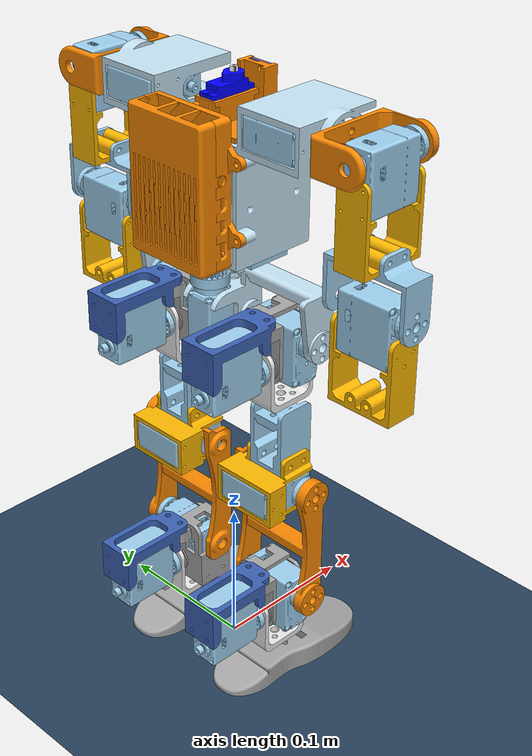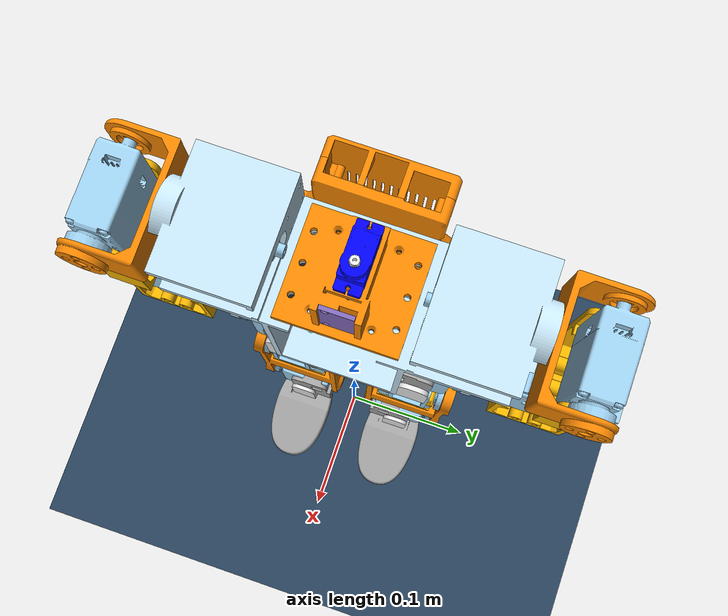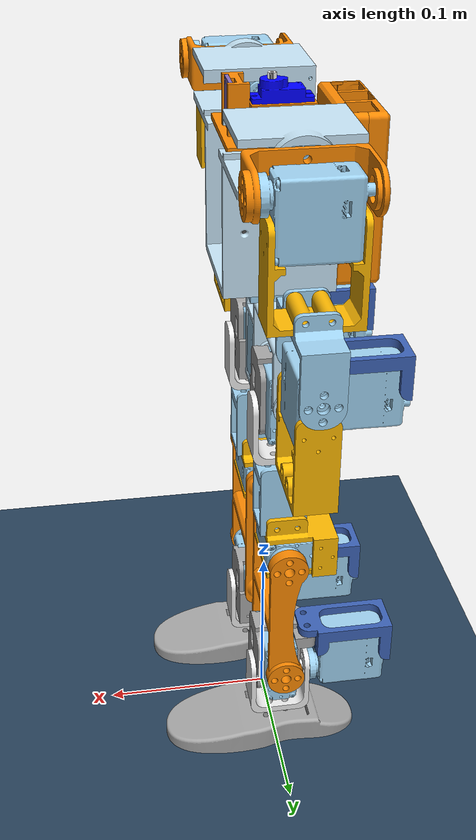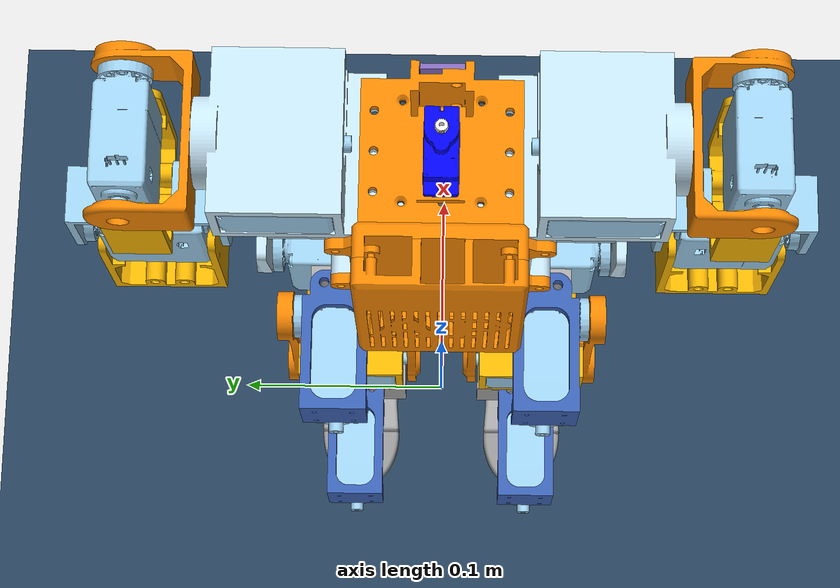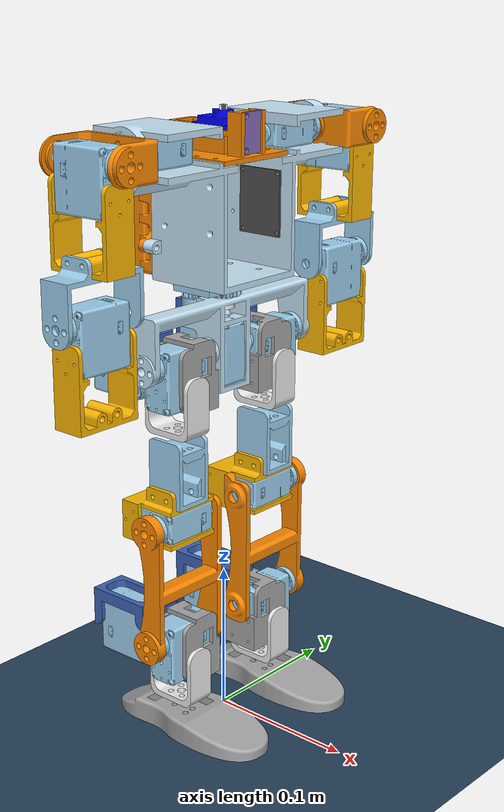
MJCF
<mujoco model="scene">
    <include file="wr2.xml" />

    <visual>
        <headlight diffuse="0.6 0.6 0.6" ambient="0.3 0.3 0.3" specular="0 0 0" />
        <rgba haze="0.15 0.25 0.35 1" />
        <global azimuth="160" elevation="-20" />
    </visual>

    <asset>
        <texture type="skybox" builtin="gradient" rgb1="0.3 0.5 0.7" rgb2="0 0 0" width="512"
            height="3072" />
        <texture type="2d" name="groundplane" builtin="checker" mark="edge" rgb1="0.2 0.3 0.4"
            rgb2="0.1 0.2 0.3"
            markrgb="0.8 0.8 0.8" width="300" height="300" />
        <material name="groundplane" texture="groundplane" texuniform="true" texrepeat="5 5"
            reflectance="0.2" />
    </asset>

    <worldbody>
        <light pos="0 0 3.5" dir="0 0 -1" directional="true" />
        <geom name="floor" size="0 0 0.05" pos="0 0 0" type="plane" material="groundplane" />
    </worldbody>
</mujoco>

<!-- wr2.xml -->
<mujoco model="WildRobot2">
  <compiler angle="radian" meshdir="assets" autolimits="true" />
  <default>
    <default class="WildRobot2">
      <joint frictionloss="0.1" armature="0.005" />
      <position kp="50" dampratio="1" />
      <default class="visual">
        <geom type="mesh" contype="0" conaffinity="0" group="2" />
      </default>
      <default class="collision">
        <geom group="3" />
      </default>
    </default>
    <default class="htd45hServo">
      <geom contype="0" conaffinity="0" />
      <!-- 2026-09-12 A1/B1/B2 low-load HTD-45H SysID; armature, kv, and torque limit held fixed. -->
      <joint damping="1.10618" frictionloss="0.324094" armature="0.024992" />
      <position kp="31.902" kv="0.5" forcerange="-4.0 4.0" />
    </default>
    <default class="backlash">
      <!-- +/- 0.5° of backlash -->
      <joint damping="0.01" frictionloss="0" armature="0.01" limited="true" range="-0.008726646259971648 0.008726646259971648" />
    </default>
  </default>
  <option timestep="0.002">
    <flag eulerdamp="disable" />
  </option>
  <worldbody>
    <!-- Link torso -->
    <body name="torso" pos="0 0 0.305000" quat="1 0 0 0" childclass="WildRobot2">
      <freejoint name="torso_freejoint" />
      <inertial pos="-0.00450649 -3.25097e-06 0.0661093" mass="0.309858" fullinertia="0.00109995 0.000344079 0.000897668 -6.75614e-07 1.83232e-05 -1.42174e-07" />
      <!-- Part top -->
      <geom type="mesh" class="visual" pos="-0.0348 0 0.04238" quat="0.707107 -0 -0.707107 0" mesh="top" material="top_material" />
      <!-- Part buslinkerv3_0 -->
      <geom type="mesh" class="visual" pos="0.135 -0.03 0.04088" quat="0.707107 -0.707107 0 0" mesh="buslinkerv3_0" material="buslinkerv3_0_material" />
      <!-- Part buslinkerv3_0_2 -->
      <geom type="mesh" class="visual" pos="0.1445 0.0285 0.04088" quat="0.707107 -0.707107 0 0" mesh="buslinkerv3_0" material="buslinkerv3_0_material" />
      <!-- Part spline -->
      <geom type="mesh" class="visual" pos="-0.00515 0 0.07328" quat="0 -0 0 1" mesh="spline" material="spline_material" />
      <!-- Part part_4 -->
      <geom type="mesh" class="visual" pos="0 -0 -0.0303" quat="1 -0 -0 -0" mesh="part_4" material="part_4_material" />
      <!-- Part htd_45h_1circle -->
      <geom type="mesh" class="visual" pos="-0.0063513 0.0314312 0.141579" quat="0.500082 -0.499918 0.500082 0.499918" mesh="htd_45h_1circle" material="htd_45h_1circle_material" />
      <!-- Part buslinkerv3_0_3 -->
      <geom type="mesh" class="visual" pos="0 -0.13975 0.07038" quat="0.707107 -0 0 -0.707107" mesh="buslinkerv3_0" material="buslinkerv3_0_material" />
      <!-- Part bottom -->
      <geom type="mesh" class="visual" pos="-0.0348 0 0.04238" quat="0.707107 -0 -0.707107 0" mesh="bottom" material="bottom_material" />
      <!-- Part bno085 -->
      <geom type="mesh" class="visual" pos="0.023 0.09525 0.08828" quat="0.5 0.5 -0.5 -0.5" mesh="bno085" material="bno085_material" />
      <!-- Part part_5 -->
      <geom type="mesh" class="visual" pos="-0 0 -0.0303" quat="1 -0 0 0" mesh="part_5" material="part_5_material" />
      <!-- Part htd_45h_1circle_2 -->
      <geom type="mesh" class="visual" pos="-0.0063513 -0.0314312 0.0223007" quat="0.499918 0.500082 -0.499918 0.500082" mesh="htd_45h_1circle" material="htd_45h_1circle_material" />
      <!-- Part waist_yaw_driven -->
      <geom type="mesh" class="visual" pos="0 0 -0.0145" quat="1 -0 -0 0" mesh="waist_yaw_driven" material="waist_yaw_driven_material" />
      <!-- Part servo_case -->
      <geom type="mesh" class="visual" pos="-0.00515 0 0.07328" quat="0 0 -0 1" mesh="servo_case" material="servo_case_material" />
      <!-- Frame torso_imu -->
      <site group="3" name="torso_imu" pos="0.023 0.000261261 0.08828" quat="0.5 -0.5 0.5 -0.5" />
      <!-- Link hip_link -->
      <body name="hip_link" pos="0 -0 -0.0119" quat="1 0 0 -0">
        <!-- Joint from torso to hip_link -->
        <joint axis="0 0 1" name="waist_yaw_driven" type="hinge" range="-2.0943951023931953 2.0943951023931953" class="htd45hServo" />
        <inertial pos="-0.00644483 1.35469e-05 -0.03083" mass="0.109796" fullinertia="0.000108239 4.08535e-05 9.45851e-05 3.926e-09 -4.41117e-06 1.6583e-08" />
        <!-- Part bearing_axk0414 -->
        <geom type="mesh" class="visual" pos="0 0 -0.0099" quat="1 -0 -0 0" mesh="bearing_axk0414" material="bearing_axk0414_material" />
        <!-- Part htd_45h_1circle_3 -->
        <geom type="mesh" class="visual" pos="-0.0136487 0.0596393 -0.0655688" quat="0.707107 0.000116219 -0.000116219 -0.707107" mesh="htd_45h_1circle" material="htd_45h_1circle_material" />
        <!-- Part waist -->
        <geom type="mesh" class="visual" pos="-0 0 -0.037" quat="1 -0 0 0" mesh="waist" material="waist_material" />
        <!-- Part bearing_axk0414_2 -->
        <geom type="mesh" class="visual" pos="-0 0 -0.0169" quat="1 -0 0 0" mesh="bearing_axk0414" material="bearing_axk0414_material" />
        <!-- Link right_servo_group -->
        <body name="right_hip_pitch_link" pos="0 -0.06838 -0.037" quat="0 -0 0.707107 -0.707107">
          <!-- Joint from hip_link to right_servo_group -->
          <joint axis="0 0 1" name="right_hip_pitch" type="hinge" range="-0.6981317007977309 1.5707963267948974" class="htd45hServo" />
          <inertial pos="0.0209618 0.00916171 -0.0256823" mass="0.154667" fullinertia="3.8e-05 0.000100156 0.000110407 2.71131e-06 1.99189e-06 1.42666e-06" />
          <!-- Part hip_pitch_right -->
          <geom type="mesh" class="visual" pos="1.40042e-05 0.00027844 -0.0674597" quat="0.000292354 0.000292013 0.707519 -0.706694" mesh="hip_pitch_right" material="hip_pitch_right_material" />
          <!-- Part hip_roll_right -->
          <geom type="mesh" class="visual" pos="1.40042e-05 0.00027844 -0.0674597" quat="0.000292354 0.000292013 0.707519 -0.706694" mesh="hip_roll_right" material="hip_roll_right_material" />
          <!-- Part htd_45h_1circle_4 -->
          <geom type="mesh" class="visual" pos="-0.0596436 0.0062757 -0.0522108" quat="1 0.00074741 -0.00041321 3.08837e-07" mesh="htd_45h_1circle" material="htd_45h_1circle_material" />
          <!-- Part htd_45h_1circle_5 -->
          <geom type="mesh" class="visual" pos="0.0718595 0.0139296 0.033375" quat="0.000528376 -0.707399 -0.000296279 0.706814" mesh="htd_45h_1circle" material="htd_45h_1circle_material" />
          <!-- Link right_up_leg -->
          <body name="right_upper_leg" pos="0.01974 0.0202141 -0.0263476" quat="0.707691 -0 0.706522 0.000824559">
            <!-- Joint from right_servo_group to right_up_leg -->
            <joint axis="0 0 1" name="right_hip_roll" type="hinge" range="-0.17453292519942673 1.0471975511966038" class="htd45hServo" />
            <inertial pos="-0.00075001 0.075094 -0.011388" mass="0.10792" fullinertia="7.6039e-05 2.94453e-05 7.34087e-05 1.00592e-06 -5.72487e-07 -9.34686e-06" />
            <!-- Part upper_leg_link -->
            <geom type="mesh" class="visual" pos="0.04112 -0.02032 -0.01906" quat="0.5 0.5 0.5 -0.5" mesh="upper_leg_link" material="upper_leg_link_material" />
            <!-- Part knee_link_right -->
            <geom type="mesh" class="visual" pos="0.04102 -0.02032 -0.01906" quat="0.5 0.5 0.5 -0.5" mesh="knee_link_right" material="knee_link_right_material" />
            <!-- Part htd_45h_1circle_6 -->
            <geom type="mesh" class="visual" pos="0.0274088 0.146499 -0.0125087" quat="0.499918 0.500082 -0.500082 -0.499918" mesh="htd_45h_1circle" material="htd_45h_1circle_material" />
            <!-- Part hip_pitch_link -->
            <geom type="mesh" class="visual" pos="0.04112 -0.02012 -0.01906" quat="0.5 0.5 0.5 -0.5" mesh="hip_pitch_link" material="hip_pitch_link_material" />
            <!-- Link lower_leg_link_right -->
            <body name="right_lower_leg" pos="-0.02476 0.0868125 -0.0187236" quat="0.499915 -0.500498 0.500085 -0.499502">
              <!-- Joint from right_up_leg to lower_leg_link_right -->
              <joint axis="0 0 1" name="right_knee_pitch" type="hinge" range="0.0 1.5707963267948966" class="htd45hServo" />
              <inertial pos="-0.0414503 0.00185486 0.0234949" mass="0.0260653" fullinertia="1.64774e-05 3.43549e-05 1.92076e-05 1.55093e-07 9.7293e-08 -4.8887e-08" />
              <!-- Part lower_leg_link_right -->
              <geom type="mesh" class="visual" pos="0.10718 -0 0.06638" quat="0.5 0.5 0.5 0.5" mesh="lower_leg_link_right" material="lower_leg_link_right_material" />
              <!-- Link right_servo_group_2 -->
              <body name="right_ankle_pitch_link" pos="-0.08006 -0 -0" quat="0 0.707107 -0.707107 -0">
                <!-- Joint from lower_leg_link_right to right_servo_group_2 -->
                <joint axis="0 0 1" name="right_ankle_pitch" type="hinge" range="-0.6981317007977309 1.5707963267948974" class="htd45hServo" />
                <inertial pos="0.0209618 0.00916171 -0.0256823" mass="0.154667" fullinertia="3.8e-05 0.000100156 0.000110407 2.71131e-06 1.99189e-06 1.42666e-06" />
                <!-- Part hip_pitch_right_2 -->
                <geom type="mesh" class="visual" pos="1.40042e-05 0.00027844 -0.0674597" quat="0.000292354 0.000292013 0.707519 -0.706694" mesh="hip_pitch_right" material="hip_pitch_right_material" />
                <!-- Part hip_roll_right_2 -->
                <geom type="mesh" class="visual" pos="1.40042e-05 0.00027844 -0.0674597" quat="0.000292354 0.000292013 0.707519 -0.706694" mesh="hip_roll_right" material="hip_roll_right_material" />
                <!-- Part htd_45h_1circle_7 -->
                <geom type="mesh" class="visual" pos="-0.0596436 0.0062757 -0.0522108" quat="1 0.00074741 -0.00041321 3.08837e-07" mesh="htd_45h_1circle" material="htd_45h_1circle_material" />
                <!-- Part htd_45h_1circle_8 -->
                <geom type="mesh" class="visual" pos="0.0718595 0.0139296 0.033375" quat="0.000528376 -0.707399 -0.000296279 0.706814" mesh="htd_45h_1circle" material="htd_45h_1circle_material" />
                <!-- Link foot -->
                <body name="right_foot" pos="0.01974 0.0202141 -0.0263476" quat="0.707691 -0 0.706522 0.000824559">
                  <!-- Joint from right_servo_group_2 to foot -->
                  <joint axis="0 0 1" name="right_ankle_roll" type="hinge" range="-0.6981317007977318 0.6981317007977318" class="htd45hServo" />
                  <inertial pos="3.86215e-07 0.0371704 -0.0304481" mass="0.0732798" fullinertia="6.43617e-05 6.72803e-05 1.69047e-05 -2.66e-10 9.72e-10 2.29499e-06" />
                  <!-- Part foot -->
                  <geom type="mesh" class="visual" pos="0.04112 -0.20824 -0.01906" quat="0.5 0.5 0.5 -0.5" mesh="foot" material="foot_material" />
                  <!-- Part hip_pitch_link_2 -->
                  <geom type="mesh" class="visual" pos="0.04112 -0.02012 -0.01906" quat="0.5 0.5 0.5 -0.5" mesh="hip_pitch_link" material="hip_pitch_link_material" />
                  <geom name="right_foot_collision" type="box" class="collision" pos="0 0.0385 -0.02906" size="0.02352 0.0075 0.06" friction="1 0.005 0.0001" material="foot_material" />
                  <site name="right_foot_center" type="sphere" pos="0 0.046 -0.02906" size="0.003" group="3" rgba="0.9 0.1 0.1 0.8" />
                </body>
              </body>
            </body>
          </body>
        </body>
        <!-- Link left_servo_group -->
        <body name="left_hip_pitch_link" pos="-0 0.06838 -0.037" quat="0.707107 -0.707107 -0 0">
          <!-- Joint from hip_link to left_servo_group -->
          <joint axis="0 0 1" name="left_hip_pitch" type="hinge" range="-1.5707963267948966 0.6981317007977318" class="htd45hServo" />
          <inertial pos="-0.0210269 0.00916174 -0.0257363" mass="0.154667" fullinertia="3.80106e-05 0.000100004 0.000110244 -2.70852e-06 -2.19924e-06 1.423e-06" />
          <!-- Part htd_45h_1circle_9 -->
          <geom type="mesh" class="visual" pos="-0.0718995 0.0140687 -0.0860224" quat="0.000528621 -0.706814 0.000295842 -0.707399" mesh="htd_45h_1circle" material="htd_45h_1circle_material" />
          <!-- Part hip_pitch_left -->
          <geom type="mesh" class="visual" pos="1.40042e-05 0.00027844 -0.0674597" quat="0.706694 0.707519 -0.000292013 0.000292354" mesh="hip_pitch_left" material="hip_pitch_left_material" />
          <!-- Part htd_45h_1circle_10 -->
          <geom type="mesh" class="visual" pos="-0.0596436 0.0062757 -0.0522108" quat="1 0.00074741 -0.00041321 3.08837e-07" mesh="htd_45h_1circle" material="htd_45h_1circle_material" />
          <!-- Part hip_roll_left -->
          <geom type="mesh" class="visual" pos="1.40042e-05 0.00027844 -0.0674597" quat="0.706694 0.707519 -0.000292013 0.000292354" mesh="hip_roll_left" material="hip_roll_left_material" />
          <!-- Link left_up_leg -->
          <body name="left_upper_leg" pos="-0.01978 0.020214 -0.0262853" quat="0.706522 -0 -0.70769 -0.000824559">
            <!-- Joint from left_servo_group to left_up_leg -->
            <joint axis="0 0 1" name="left_hip_roll" type="hinge" range="-1.0471975511965976 0.17453292519943295" class="htd45hServo" />
            <inertial pos="0.00075001 0.0750664 -0.011388" mass="0.10792" fullinertia="7.59689e-05 2.94453e-05 7.33386e-05 -1.01951e-06 5.72487e-07 -9.33662e-06" />
            <!-- Part knee_link_left -->
            <geom type="mesh" class="visual" pos="-0.04102 -0.02032 -0.01906" quat="0.5 0.5 0.5 -0.5" mesh="knee_link_left" material="knee_link_left_material" />
            <!-- Part upper_leg_link_2 -->
            <geom type="mesh" class="visual" pos="0.04112 -0.02032 -0.01906" quat="0.5 0.5 0.5 -0.5" mesh="upper_leg_link" material="upper_leg_link_material" />
            <!-- Part htd_45h_1circle_11 -->
            <geom type="mesh" class="visual" pos="-0.0274088 0.0272207 -0.0125087" quat="0.499918 0.500082 0.500082 0.499918" mesh="htd_45h_1circle" material="htd_45h_1circle_material" />
            <!-- Part hip_pitch_link_3 -->
            <geom type="mesh" class="visual" pos="0.04112 -0.02012 -0.01906" quat="0.5 0.5 0.5 -0.5" mesh="hip_pitch_link" material="hip_pitch_link_material" />
            <!-- Link lower_leg_link_left -->
            <body name="left_lower_leg" pos="0.02476 0.0869075 -0.0187236" quat="0.499502 -0.500085 -0.500498 0.499915">
              <!-- Joint from left_up_leg to lower_leg_link_left -->
              <joint axis="0 0 1" name="left_knee_pitch" type="hinge" range="-1.5707963267948966 0.0" class="htd45hServo" />
              <inertial pos="0.0414503 0.00185486 0.0234949" mass="0.0260653" fullinertia="1.64774e-05 3.43549e-05 1.92076e-05 -1.55093e-07 -9.7293e-08 -4.8887e-08" />
              <!-- Part lower_leg_link_left -->
              <geom type="mesh" class="visual" pos="-0.10718 -0 0.06638" quat="0.5 -0.5 -0.5 0.5" mesh="lower_leg_link_left" material="lower_leg_link_left_material" />
              <!-- Link left_servo_group_2 -->
              <body name="left_ankle_pitch_link" pos="0.08006 -0 -0" quat="0 0.707107 0.707107 0">
                <!-- Joint from lower_leg_link_left to left_servo_group_2 -->
                <joint axis="0 0 1" name="left_ankle_pitch" type="hinge" range="-1.5707963267948966 0.6981317007977318" class="htd45hServo" />
                <inertial pos="-0.0210269 0.00916174 -0.0257363" mass="0.154667" fullinertia="3.80106e-05 0.000100004 0.000110244 -2.70852e-06 -2.19924e-06 1.423e-06" />
                <!-- Part htd_45h_1circle_12 -->
                <geom type="mesh" class="visual" pos="-0.0718995 0.0140687 -0.0860224" quat="0.000528621 -0.706814 0.000295842 -0.707399" mesh="htd_45h_1circle" material="htd_45h_1circle_material" />
                <!-- Part hip_pitch_left_2 -->
                <geom type="mesh" class="visual" pos="1.40042e-05 0.00027844 -0.0674597" quat="0.706694 0.707519 -0.000292013 0.000292354" mesh="hip_pitch_left" material="hip_pitch_left_material" />
                <!-- Part htd_45h_1circle_13 -->
                <geom type="mesh" class="visual" pos="-0.0596436 0.0062757 -0.0522108" quat="1 0.00074741 -0.00041321 3.08837e-07" mesh="htd_45h_1circle" material="htd_45h_1circle_material" />
                <!-- Part hip_roll_left_2 -->
                <geom type="mesh" class="visual" pos="1.40042e-05 0.00027844 -0.0674597" quat="0.706694 0.707519 -0.000292013 0.000292354" mesh="hip_roll_left" material="hip_roll_left_material" />
                <!-- Link foot_2 -->
                <body name="left_foot" pos="-0.01978 0.020214 -0.0262853" quat="0.706522 -0 -0.70769 -0.000824559">
                  <!-- Joint from left_servo_group_2 to foot_2 -->
                  <joint axis="0 0 1" name="left_ankle_roll" type="hinge" range="-0.6981317007977318 0.6981317007977318" class="htd45hServo" />
                  <inertial pos="3.86215e-07 0.0371704 -0.0304481" mass="0.0732798" fullinertia="6.43617e-05 6.72803e-05 1.69047e-05 -2.66e-10 9.72e-10 2.29499e-06" />
                  <!-- Part foot_2 -->
                  <geom type="mesh" class="visual" pos="0.04112 -0.20824 -0.01906" quat="0.5 0.5 0.5 -0.5" mesh="foot" material="foot_material" />
                  <!-- Part hip_pitch_link_4 -->
                  <geom type="mesh" class="visual" pos="0.04112 -0.02012 -0.01906" quat="0.5 0.5 0.5 -0.5" mesh="hip_pitch_link" material="hip_pitch_link_material" />
                  <geom name="left_foot_collision" type="box" class="collision" pos="0 0.0385 -0.02906" size="0.02352 0.0075 0.06" friction="1 0.005 0.0001" material="foot_material" />
                  <site name="left_foot_center" type="sphere" pos="0 0.046 -0.02906" size="0.003" group="3" rgba="0.9 0.1 0.1 0.8" />
                </body>
              </body>
            </body>
          </body>
        </body>
        <!-- Link waist_yaw_drive -->
        <body name="waist_yaw_drive" pos="-0.0198636 -4.74705e-05 -0.0134" quat="0.000120096 0.707106 -0.707107 -0.000704463">
          <!-- Joint from hip_link to waist_yaw_drive -->
          <joint axis="0 0 1" name="waist_yaw_drive" type="hinge" range="-2.0943951023931953 2.0943951023931953" class="htd45hServo" />
          <inertial pos="-0 -0 -0.00678506" mass="0.00587819" fullinertia="3.05721e-07 3.05721e-07 4.00613e-07 -0 0 0" />
          <!-- Part waist_yaw_drive -->
          <geom type="mesh" class="visual" pos="-0 -0 -0.0067" quat="0 0.707107 -0.707107 0" mesh="waist_yaw_drive" material="waist_yaw_drive_material" />
        </body>
      </body>
      <!-- Link shoulder_pitch_right_link -->
      <body name="right_shoulder_pitch_link" pos="-0.000136429 -0.0836 0.0819875" quat="0.499502 -0.500498 -0.499915 -0.500085">
        <!-- Joint from torso to shoulder_pitch_right_link -->
        <joint axis="0 0 1" name="right_shoulder_pitch" type="hinge" range="-3.6651914291880923 0.5235987755982988" class="htd45hServo" />
        <inertial pos="2.188e-09 0.0020558 -0.013529" mass="0.0131163" fullinertia="8.92566e-06 2.23903e-06 7.85716e-06 -3e-12 1e-12 3.21458e-07" />
        <!-- Part shoulder_pitch_right_link -->
        <geom type="mesh" class="visual" pos="-0.11224 -0 0.084" quat="0.5 0.5 0.5 0.5" mesh="shoulder_pitch_right_link" material="shoulder_pitch_right_link_material" />
        <!-- Link right_up_arm -->
        <body name="right_upper_arm" pos="-0 0.02706 -0.028" quat="0.5 -0.5 0.5 0.5">
          <!-- Joint from shoulder_pitch_right_link to right_up_arm -->
          <joint axis="0 0 1" name="right_shoulder_roll" type="hinge" range="-3.141592653589793 0.0" class="htd45hServo" />
          <inertial pos="-5.52977e-05 0.0233454 -0.0241007" mass="0.0927462" fullinertia="7.55689e-05 2.23699e-05 7.05689e-05 6.155e-08 -5.161e-09 3.81e-06" />
          <!-- Part part_9 -->
          <geom type="mesh" class="visual" pos="-0.112026 0.112135 -0.0266219" quat="0.499502 0.500085 -0.500498 0.499915" mesh="part_9" material="part_9_material" />
          <!-- Part part_10 -->
          <geom type="mesh" class="visual" pos="-0.112126 0.112135 -0.0266219" quat="0.499502 0.500085 -0.500498 0.499915" mesh="part_10" material="part_10_material" />
          <!-- Part htd_45h_1circle_14 -->
          <geom type="mesh" class="visual" pos="-0.0596436 0.0062757 -0.0522108" quat="1 0.00074741 -0.00041321 3.08837e-07" mesh="htd_45h_1circle" material="htd_45h_1circle_material" />
          <!-- Link fore_arm -->
          <body name="right_forearm" pos="0.0269345 0.0910146 -0.0265316" quat="0.707399 0.000412109 0.706814 0.00041245">
            <!-- Joint from right_up_arm to fore_arm -->
            <joint axis="0 0 1" name="right_elbow_pitch" type="hinge" range="-2.0943951023931935 2.094395102393197" class="htd45hServo" />
            <inertial pos="-4.62576e-05 0.0162997 -0.0237356" mass="0.0808281" fullinertia="4.21078e-05 1.59513e-05 3.18101e-05 -9.974e-09 1.326e-09 2.19308e-06" />
            <!-- Part part_9_2 -->
            <geom type="mesh" class="visual" pos="-0.112026 0.112135 -0.0266219" quat="0.499502 0.500085 -0.500498 0.499915" mesh="part_9" material="part_9_material" />
            <!-- Part htd_45h_1circle_15 -->
            <geom type="mesh" class="visual" pos="-0.0596436 0.0062757 -0.0522108" quat="1 0.00074741 -0.00041321 3.08837e-07" mesh="htd_45h_1circle" material="htd_45h_1circle_material" />
          </body>
        </body>
      </body>
      <!-- Link shoulder_pitch_left_link -->
      <body name="left_shoulder_pitch_link" pos="-0.000136429 0.0836 0.0818925" quat="0.500498 0.499502 0.500085 -0.499915">
        <!-- Joint from torso to shoulder_pitch_left_link -->
        <joint axis="0 0 1" name="left_shoulder_pitch" type="hinge" range="-0.5235987755982988 3.6651914291880923" class="htd45hServo" />
        <inertial pos="-4.228e-09 0.00205581 -0.0135291" mass="0.0131162" fullinertia="8.92564e-06 2.23903e-06 7.85716e-06 -7e-12 -0 3.21457e-07" />
        <!-- Part shoulder_pitch_left_link -->
        <geom type="mesh" class="visual" pos="0.11224 0 0.084" quat="0.5 -0.5 -0.5 0.5" mesh="shoulder_pitch_left_link" material="shoulder_pitch_left_link_material" />
        <!-- Link left_up_arm -->
        <body name="left_upper_arm" pos="-0 0.02706 -0.028" quat="0.5 -0.5 -0.5 -0.5">
          <!-- Joint from shoulder_pitch_left_link to left_up_arm -->
          <joint axis="0 0 1" name="left_shoulder_roll" type="hinge" range="0.0 3.141592653589793" class="htd45hServo" />
          <inertial pos="-3.18845e-05 0.0233454 -0.0241007" mass="0.0927462" fullinertia="7.55689e-05 2.237e-05 7.0569e-05 -1.05132e-07 1.43e-10 3.80986e-06" />
          <!-- Part htd_45h_1circle_16 -->
          <geom type="mesh" class="visual" pos="-0.0596436 0.0062757 -0.0522108" quat="1 0.00074741 -0.00041321 3.08837e-07" mesh="htd_45h_1circle" material="htd_45h_1circle_material" />
          <!-- Part part_10_2 -->
          <geom type="mesh" class="visual" pos="0.112074 0.112135 -0.0264367" quat="0.499915 0.500498 0.500085 -0.499502" mesh="part_10" material="part_10_material" />
          <!-- Part part_9_3 -->
          <geom type="mesh" class="visual" pos="-0.112026 0.112135 -0.0266219" quat="0.499502 0.500085 -0.500498 0.499915" mesh="part_9" material="part_9_material" />
          <!-- Link fore_arm_2 -->
          <body name="left_forearm" pos="-0.0269855 0.0910146 -0.0265762" quat="0.706814 0.00041245 -0.707399 -0.000412109">
            <!-- Joint from left_up_arm to fore_arm_2 -->
            <joint axis="0 0 1" name="left_elbow_pitch" type="hinge" range="-2.0943951023931953 2.0943951023931953" class="htd45hServo" />
            <inertial pos="-4.62576e-05 0.0162997 -0.0237356" mass="0.0808281" fullinertia="4.21078e-05 1.59513e-05 3.18101e-05 -9.974e-09 1.326e-09 2.19308e-06" />
            <!-- Part part_9_4 -->
            <geom type="mesh" class="visual" pos="-0.112026 0.112135 -0.0266219" quat="0.499502 0.500085 -0.500498 0.499915" mesh="part_9" material="part_9_material" />
            <!-- Part htd_45h_1circle_17 -->
            <geom type="mesh" class="visual" pos="-0.0596436 0.0062757 -0.0522108" quat="1 0.00074741 -0.00041321 3.08837e-07" mesh="htd_45h_1circle" material="htd_45h_1circle_material" />
          </body>
        </body>
      </body>
    </body>
  </worldbody>
  <asset>
    <mesh file="servo_case.stl" />
    <mesh file="hip_roll_left.stl" />
    <mesh file="bearing_axk0414.stl" />
    <mesh file="waist_yaw_driven.stl" />
    <mesh file="hip_pitch_link.stl" />
    <mesh file="top.stl" />
    <mesh file="part_5.stl" />
    <mesh file="htd_45h_1circle.stl" />
    <mesh file="hip_roll_right.stl" />
    <mesh file="knee_link_right.stl" />
    <mesh file="hip_pitch_right.stl" />
    <mesh file="knee_link_left.stl" />
    <mesh file="hip_pitch_left.stl" />
    <mesh file="part_9.stl" />
    <mesh file="part_10.stl" />
    <mesh file="part_4.stl" />
    <mesh file="lower_leg_link_right.stl" />
    <mesh file="waist.stl" />
    <mesh file="buslinkerv3_0.stl" />
    <mesh file="shoulder_pitch_right_link.stl" />
    <mesh file="lower_leg_link_left.stl" />
    <mesh file="shoulder_pitch_left_link.stl" />
    <mesh file="foot.stl" />
    <mesh file="spline.stl" />
    <mesh file="bottom.stl" />
    <mesh file="waist_yaw_drive.stl" />
    <mesh file="upper_leg_link.stl" />
    <mesh file="bno085.stl" />
    <material name="top_material" rgba="0.972549 0.529412 0.00392157 1" />
    <material name="buslinkerv3_0_material" rgba="0.301961 0.301961 0.301961 1" />
    <material name="spline_material" rgba="0.917647 0.917647 0.917647 1" />
    <material name="part_4_material" rgba="0.768627 0.886275 0.952941 1" />
    <material name="htd_45h_1circle_material" rgba="0.615686 0.811765 0.929412 1" />
    <material name="bottom_material" rgba="0.972549 0.529412 0.00392157 1" />
    <material name="bno085_material" rgba="0.513725 0.415686 0.733333 1" />
    <material name="part_5_material" rgba="0.972549 0.529412 0.00392157 1" />
    <material name="waist_yaw_driven_material" rgba="0.615686 0.811765 0.929412 1" />
    <material name="servo_case_material" rgba="0 0 1 1" />
    <material name="bearing_axk0414_material" rgba="0.917647 0.917647 0.917647 1" />
    <material name="waist_material" rgba="0.768627 0.886275 0.952941 1" />
    <material name="hip_pitch_right_material" rgba="0.647059 0.647059 0.647059 1" />
    <material name="hip_roll_right_material" rgba="0.231373 0.380392 0.705882 1" />
    <material name="upper_leg_link_material" rgba="0.615686 0.811765 0.929412 1" />
    <material name="knee_link_right_material" rgba="0.980392 0.713725 0.00392157 1" />
    <material name="hip_pitch_link_material" rgba="0.917647 0.917647 0.917647 1" />
    <material name="lower_leg_link_right_material" rgba="0.972549 0.529412 0.00392157 1" />
    <material name="foot_material" rgba="0.647059 0.647059 0.647059 1" />
    <material name="hip_pitch_left_material" rgba="0.647059 0.647059 0.647059 1" />
    <material name="hip_roll_left_material" rgba="0.231373 0.380392 0.705882 1" />
    <material name="knee_link_left_material" rgba="0.980392 0.713725 0.00392157 1" />
    <material name="lower_leg_link_left_material" rgba="0.972549 0.529412 0.00392157 1" />
    <material name="waist_yaw_drive_material" rgba="0.615686 0.811765 0.929412 1" />
    <material name="shoulder_pitch_right_link_material" rgba="0.972549 0.529412 0.00392157 1" />
    <material name="part_9_material" rgba="0.980392 0.713725 0.00392157 1" />
    <material name="part_10_material" rgba="0.615686 0.811765 0.929412 1" />
    <material name="shoulder_pitch_left_link_material" rgba="0.972549 0.529412 0.00392157 1" />
  </asset>
  <actuator>
    <position class="htd45hServo" name="waist_yaw_drive" joint="waist_yaw_drive" inheritrange="1" />
    <position class="htd45hServo" name="left_shoulder_pitch" joint="left_shoulder_pitch" inheritrange="1" />
    <position class="htd45hServo" name="left_shoulder_roll" joint="left_shoulder_roll" inheritrange="1" />
    <position class="htd45hServo" name="left_elbow_pitch" joint="left_elbow_pitch" inheritrange="1" />
    <position class="htd45hServo" name="left_hip_pitch" joint="left_hip_pitch" inheritrange="1" />
    <position class="htd45hServo" name="left_hip_roll" joint="left_hip_roll" inheritrange="1" />
    <position class="htd45hServo" name="left_knee_pitch" joint="left_knee_pitch" inheritrange="1" />
    <position class="htd45hServo" name="left_ankle_pitch" joint="left_ankle_pitch" inheritrange="1" />
    <position class="htd45hServo" name="left_ankle_roll" joint="left_ankle_roll" inheritrange="1" />
    <position class="htd45hServo" name="right_shoulder_pitch" joint="right_shoulder_pitch" inheritrange="1" />
    <position class="htd45hServo" name="right_shoulder_roll" joint="right_shoulder_roll" inheritrange="1" />
    <position class="htd45hServo" name="right_elbow_pitch" joint="right_elbow_pitch" inheritrange="1" />
    <position class="htd45hServo" name="right_hip_pitch" joint="right_hip_pitch" inheritrange="1" />
    <position class="htd45hServo" name="right_hip_roll" joint="right_hip_roll" inheritrange="1" />
    <position class="htd45hServo" name="right_knee_pitch" joint="right_knee_pitch" inheritrange="1" />
    <position class="htd45hServo" name="right_ankle_pitch" joint="right_ankle_pitch" inheritrange="1" />
    <position class="htd45hServo" name="right_ankle_roll" joint="right_ankle_roll" inheritrange="1" />
  </actuator>
  <equality>
    <joint joint1="waist_yaw_driven" joint2="waist_yaw_drive" polycoef="0 1.0 0 0 0" />
  </equality>
  <sensor>
    <!-- Torso IMU (BNO085) - 9-DOF sensor with realistic noise -->
    <!-- Datasheet specs: Gyro ~0.014°/s/√Hz, Accel ~150μg/√Hz, Mag ~0.3μT -->
    <gyro site="torso_imu" name="torso_imu_gyro" noise="0.0002" cutoff="100" />
    <accelerometer site="torso_imu" name="torso_imu_accel" noise="0.0015" cutoff="100" />
    <magnetometer site="torso_imu" name="torso_imu_mag" noise="0.3" />
    <framequat objtype="site" objname="torso_imu" name="torso_imu_quat" />
  </sensor>
  <keyframe>
    <key name="home" qpos="0 0 0.305 1 0 0 0 0 0 0 0 0 0 0 0 0 0 0 0 0 0 0 0 0 0" ctrl="0 0 0 0 0 0 0 0 0 0 0 0 0 0 0 0 0" />
  </keyframe>
</mujoco>
